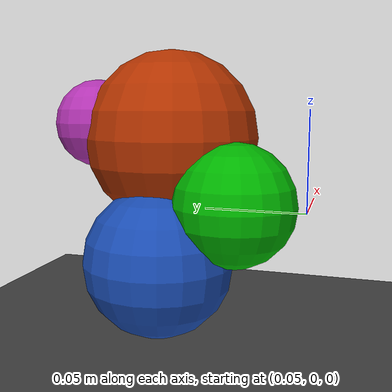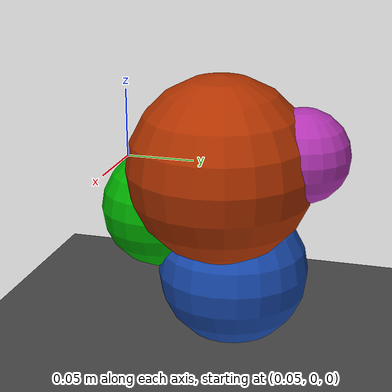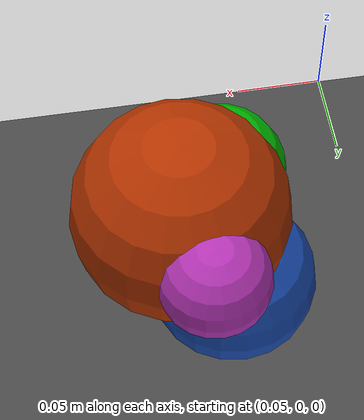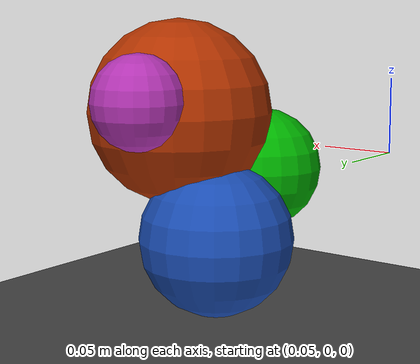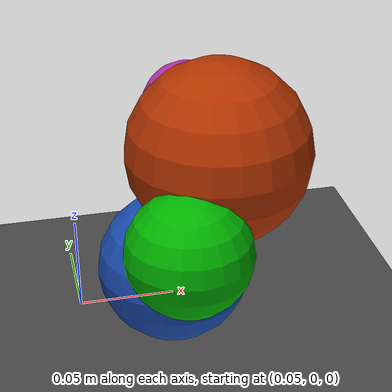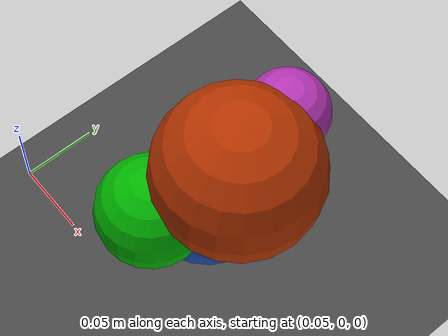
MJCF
<?xml version='1.0' encoding='utf-8'?>
<mujoco model="Hand">
    <asset>
        <texture type="skybox" builtin="gradient" rgb1="0.6 0.6 0.6" rgb2="0 0 0" width="512" height="512" />
        <texture name="texplane" type="2d" builtin="checker" rgb1=".25 .25 .25" rgb2=".3 .3 .3" width="512" height="512" mark="cross" markrgb=".8 .8 .8" />
        <material name="matplane" reflectance="0.3" texture="texplane" texrepeat="1 1" texuniform="true" />
    </asset>

    <worldbody>
        <geom name="floor" pos="0 0 -0.1" size="0 0 1" type="plane" material="matplane" />
        <light name="top" pos="0 0 1" />
    <body name="Object" pos="0.12 0.1 0.0" quat="1 0 0 0">

        <geom rgba="0.1 0.3 0.7 1" contype="1" conaffinity="1" pos="0 0 -0.05" type="sphere" size="0.05" mass="2" />
        <geom rgba="0 0.7 0 1" contype="1" conaffinity="1" pos="0 -0.05 -0.01" type="sphere" size="0.04" mass="2" />
        <geom rgba="0.7 0.2 0 1" contype="1" conaffinity="1" pos="0.03 0 0.03" type="sphere" size="0.06" mass="2" />
        <geom rgba="0.7 0.2 0.7 1" contype="1" conaffinity="1" pos="0.02 0.05 0.04" type="sphere" size="0.03" mass="2" />

    </body>
</worldbody>
        <option gravity="0 0 -1" />
</mujoco>
